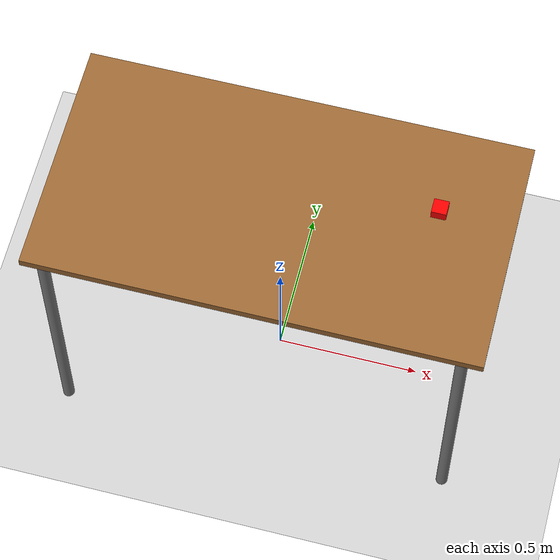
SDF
<?xml version="1.0" ?>
<sdf version="1.9">
  <world name="arm_and_table">

    <plugin filename="gz-sim-scene-broadcaster-system" name="gz::sim::systems::SceneBroadcaster"></plugin>
    <plugin filename="gz-sim-sensors-system" name="gz::sim::systems::Sensors"><render_engine>ogre2</render_engine></plugin>
    <plugin filename="gz-sim-physics-system" name="gz::sim::systems::Physics"></plugin>
    <plugin filename="gz-sim-user-commands-system" name="gz::sim::systems::UserCommands"></plugin>

    <scene>
      <ambient>0.4 0.4 0.4 1</ambient>
      <background>0.7 0.7 0.7 1</background>
      <shadows>true</shadows>
    </scene>

    <light type="directional" name="sun">
      <cast_shadows>true</cast_shadows>
      <pose>0 0 10 0 0 0</pose>
      <diffuse>0.8 0.8 0.8 1</diffuse>
      <specular>0.2 0.2 0.2 1</specular>
      <direction>-0.5 0.1 -0.9</direction>
    </light>

    <model name="ground_plane">
      <static>true</static>
      <link name="link">
        <collision name="collision"><geometry><plane><normal>0 0 1</normal><size>100 100</size></plane></geometry></collision>
        <visual name="visual"><geometry><plane><normal>0 0 1</normal><size>100 100</size></plane></geometry><material><ambient>0.8 0.8 0.8 1</ambient><diffuse>0.8 0.8 0.8 1</diffuse></material></visual>
      </link>
    </model>

    <model name="table">
      <static>true</static>
      <pose>0 0 0 0 0 0</pose>

      <link name="link">
        <collision name="surface">
            <pose>0 0 1.0 0 0 0</pose>
            <geometry><box><size>1.5 0.8 0.03</size></box></geometry>
            <surface><friction><ode><mu>0.6</mu><mu2>0.6</mu2></ode></friction></surface>
        </collision>
        <visual name="surface_visual">
            <pose>0 0 1.0 0 0 0</pose>
            <geometry><box><size>1.5 0.8 0.03</size></box></geometry>
            <material><ambient>0.6 0.4 0.2 1</ambient><diffuse>0.6 0.4 0.2 1</diffuse></material>
        </visual>

        <visual name="leg1"><pose>0.68 0.38 0.5 0 0 0</pose><geometry><cylinder><radius>0.02</radius><length>1.0</length></cylinder></geometry><material><ambient>0.5 0.5 0.5 1</ambient></material></visual>
        <visual name="leg2"><pose>0.68 -0.38 0.5 0 0 0</pose><geometry><cylinder><radius>0.02</radius><length>1.0</length></cylinder></geometry><material><ambient>0.5 0.5 0.5 1</ambient></material></visual>
        <visual name="leg3"><pose>-0.68 -0.38 0.5 0 0 0</pose><geometry><cylinder><radius>0.02</radius><length>1.0</length></cylinder></geometry><material><ambient>0.5 0.5 0.5 1</ambient></material></visual>
        <visual name="leg4"><pose>-0.68 0.38 0.5 0 0 0</pose><geometry><cylinder><radius>0.02</radius><length>1.0</length></cylinder></geometry><material><ambient>0.5 0.5 0.5 1</ambient></material></visual>
      </link>
    </model>

    <model name="red_cube">
      <pose>0.5 0.1 1.025 0 0 0</pose> <link name="link">
        <inertial>
          <mass>0.1</mass>
          <inertia><ixx>0.0001</ixx><ixy>0</ixy><ixz>0</ixz><iyy>0.0001</iyy><iyz>0</iyz><izz>0.0001</izz></inertia>
        </inertial>
        <collision name="collision">
          <geometry><box><size>0.05 0.05 0.05</size></box></geometry>
          <surface><friction><ode><mu>1.0</mu><mu2>1.0</mu2></ode></friction></surface>
        </collision>
        <visual name="visual">
          <geometry><box><size>0.05 0.05 0.05</size></box></geometry>
          <material><ambient>1 0 0 1</ambient><diffuse>1 0 0 1</diffuse></material>
        </visual>
      </link>
    </model>

  </world>
</sdf>
